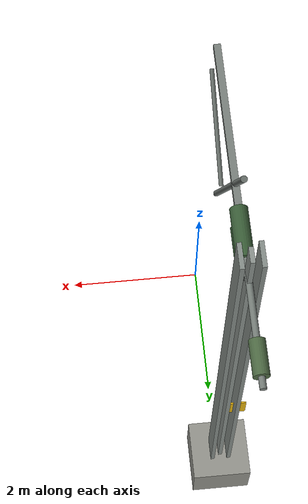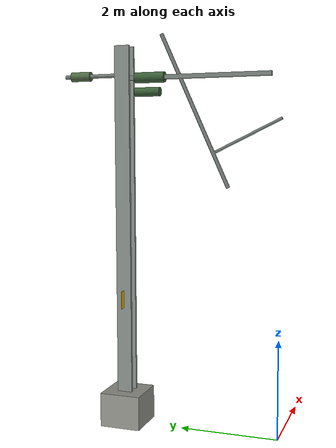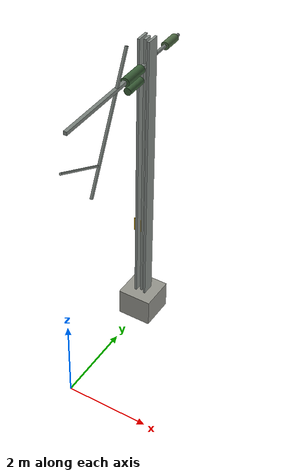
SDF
<?xml version="1.0"?>
<sdf version="1.9">
  <model name="catenary_mast">
    <static>true</static>
    <plugin filename="gz-sim-label-system" name="gz::sim::systems::Label"><label>30</label></plugin>
    <link name="mast">
      <collision name="foundation_collision"><pose>0 3.20 0.35 0 0 0</pose><geometry><box><size>0.85 0.85 0.70</size></box></geometry></collision>
      <visual name="foundation"><pose>0 3.20 0.35 0 0 0</pose><geometry><box><size>0.85 0.85 0.70</size></box></geometry><material><ambient>0.40 0.40 0.38 1</ambient><diffuse>0.58 0.58 0.55 1</diffuse></material></visual>

      <!-- H-section galvanised steel mast -->
      <visual name="mast_web"><pose>0 3.20 4.05 0 0 0</pose><geometry><box><size>0.055 0.19 7.40</size></box></geometry><material><ambient>0.35 0.37 0.36 1</ambient><diffuse>0.55 0.58 0.56 1</diffuse><specular>0.35 0.35 0.35 1</specular></material></visual>
      <visual name="mast_flange_a"><pose>0.12 3.20 4.05 0 0 0</pose><geometry><box><size>0.055 0.31 7.40</size></box></geometry><material><diffuse>0.53 0.56 0.54 1</diffuse></material></visual>
      <visual name="mast_flange_b"><pose>-0.12 3.20 4.05 0 0 0</pose><geometry><box><size>0.055 0.31 7.40</size></box></geometry><material><diffuse>0.53 0.56 0.54 1</diffuse></material></visual>

      <!-- Cantilever and registration assembly -->
      <visual name="upper_arm"><pose>0 1.70 7.12 0 0 0</pose><geometry><box><size>0.085 3.0 0.085</size></box></geometry><material><diffuse>0.48 0.51 0.49 1</diffuse></material></visual>
      <visual name="diagonal_arm"><pose>0 1.72 6.45 -0.43 0 0</pose><geometry><cylinder><radius>0.038</radius><length>3.28</length></cylinder></geometry><material><diffuse>0.46 0.49 0.47 1</diffuse></material></visual>
      <visual name="upper_insulator"><pose>0 2.65 7.12 1.570796 0 0</pose><geometry><cylinder><radius>0.105</radius><length>0.62</length></cylinder></geometry><material><diffuse>0.23 0.37 0.22 1</diffuse><specular>0.45 0.45 0.45 1</specular></material></visual>
      <visual name="lower_insulator"><pose>0 2.70 6.84 1.570796 0 0</pose><geometry><cylinder><radius>0.090</radius><length>0.52</length></cylinder></geometry><material><diffuse>0.23 0.37 0.22 1</diffuse><specular>0.45 0.45 0.45 1</specular></material></visual>
      <visual name="steady_arm"><pose>0 0.64 5.97 1.12 0 0</pose><geometry><cylinder><radius>0.028</radius><length>1.45</length></cylinder></geometry><material><diffuse>0.46 0.49 0.47 1</diffuse></material></visual>

      <!-- Feeder support and safety marker -->
      <visual name="feeder_bracket"><pose>0 3.85 7.18 1.570796 0 0</pose><geometry><cylinder><radius>0.040</radius><length>1.30</length></cylinder></geometry><material><diffuse>0.47 0.50 0.48 1</diffuse></material></visual>
      <visual name="feeder_insulator"><pose>0 4.15 7.18 1.570796 0 0</pose><geometry><cylinder><radius>0.095</radius><length>0.42</length></cylinder></geometry><material><diffuse>0.31 0.42 0.27 1</diffuse></material></visual>
      <visual name="warning_plate"><pose>-0.151 3.20 2.65 0 1.570796 0</pose><geometry><box><size>0.36 0.018 0.24</size></box></geometry><material><ambient>0.75 0.58 0.04 1</ambient><diffuse>0.92 0.72 0.06 1</diffuse></material></visual>
    </link>
  </model>
</sdf>
